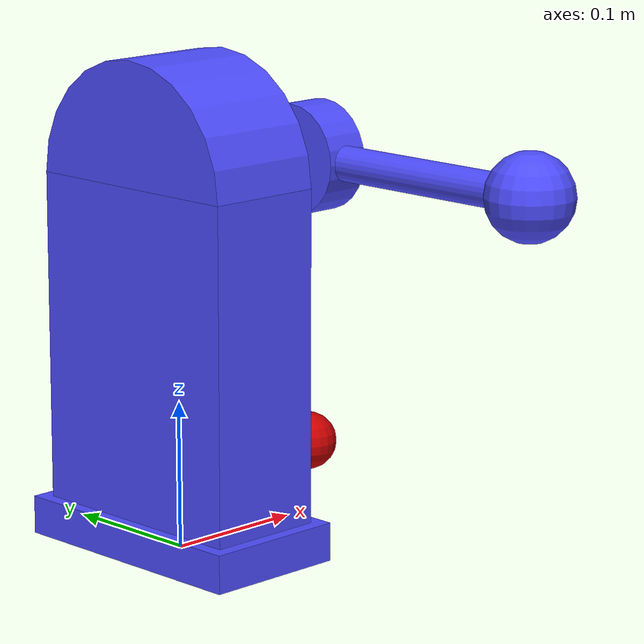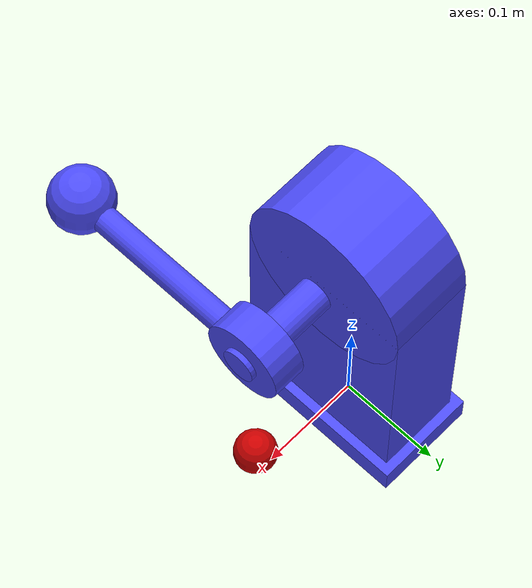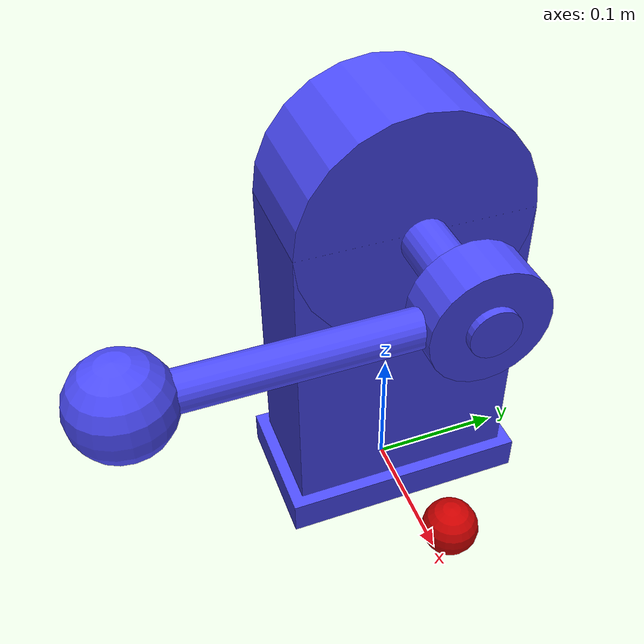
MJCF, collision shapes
<mujoco>
    <compiler angle="radian" inertiafromgeom="auto" inertiagrouprange="4 5"/>
    <asset>
        <texture name="T_lever_met" type="cube" file="../textures/metal1.png"/>

        <material name="lever_col" rgba="0.3 0.3 1.0 0.5" shininess="0" specular="0"/>
        <material name="lever_blue" rgba="0 0 .5 1" shininess="1" reflectance="1" specular="1"/>
        <material name="lever_metal0" rgba=".65 .65 .65 1" texture="T_lever_met" shininess="1" reflectance=".7" specular=".5"/>
        <material name="lever_metal1" rgba=".35 .35 .35 1" texture="T_lever_met" shininess="1" reflectance=".7" specular=".5"/>

        <mesh file="../objects/meshes/lever/lever_axis.stl" name="lever_axis"/>
        <mesh file="../objects/meshes/lever/lever_base.stl" name="lever_base"/>
        <mesh file="../objects/meshes/lever/lever_handle.stl" name="lever_handle"/>
        <mesh file="../objects/meshes/lever/lever_rod.stl" name="lever_rod"/>
        <mesh file="../objects/meshes/lever/lever_rodbase.stl" name="lever_rodbase"/>

    </asset>
    <default>

      <default class="lever_base">
          <joint armature="0.001" damping="2" limited="true"/>
          <geom conaffinity="0" contype="0" group="1" type="mesh"/>
          <position ctrllimited="true" ctrlrange="0 1.57"/>
          <default class="lever_viz">
              <geom condim="4" type="mesh"/>
          </default>
          <default class="lever_col">
              <geom conaffinity="1" condim="3" contype="1" group="4" material="lever_col" solimp="0.99 0.99 0.01" solref="0.01 1"/>
          </default>
      </default>
    </default>

    <worldbody>
            <body name="lever" childclass="lever_base">
                <geom material="lever_metal0" euler="0 1.57 0" mesh="lever_base"/>
                <geom class="lever_col" pos="0 0 0.125" size="0.041 0.083 0.125" type="box"/>
                <geom class="lever_col" euler="0 1.57 0" pos="0 0 0.25" size="0.083 0.041" type="cylinder"/>
                <geom class="lever_col" pos="0 0 0.013" size="0.05 0.092 0.013" type="box"/>
                <body name="lever_link1" pos="0.12 0 0.25">
                    <joint type="hinge" axis="1 0 0" range="-1.57 0 " name="LeverAxis"/>
                    <geom material="lever_metal1" euler="0 1.57 0" mesh="lever_axis"/>
                    <geom material="lever_metal0" euler="0 1.57 0" mesh="lever_rodbase"/>
                    <geom material="lever_blue" mesh="lever_handle" pos="0 -0.2 0" name="objGeom"/>
                    <geom material="lever_metal1" euler="1.57 0 0" mesh="lever_rod" pos="0 -0.1 0"/>
                    <geom class="lever_col" euler="0 1.57 0" size="0.038 0.016" type="cylinder" mass=".001"/>
                    <geom class="lever_col" euler="1.57 0 0" pos="0 -0.091 0" size="0.012 0.1" type="cylinder" mass=".001"/>
                    <geom class="lever_col" pos="0 -0.2 0" size="0.03" type="sphere" mass=".001"/>
                    <geom class="lever_col" euler="0 1.57 0" pos="-.025 0 0" size="0.016 0.046" type="cylinder" mass=".001"/>
                    <site name="leverStart" pos="0 -0.2 0" size="0.005" rgba="1 0 0 1"/>
                </body>
            </body>
            <site name="goal" pos="0.12 0 0.05" size="0.02"
                rgba=".8 0 0 1"/>

    </worldbody>
</mujoco>
